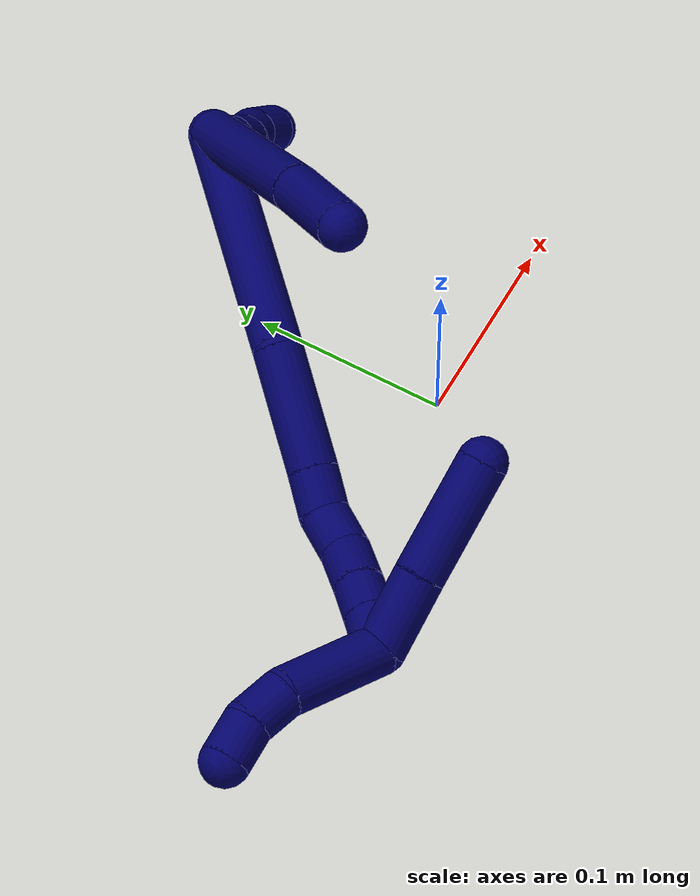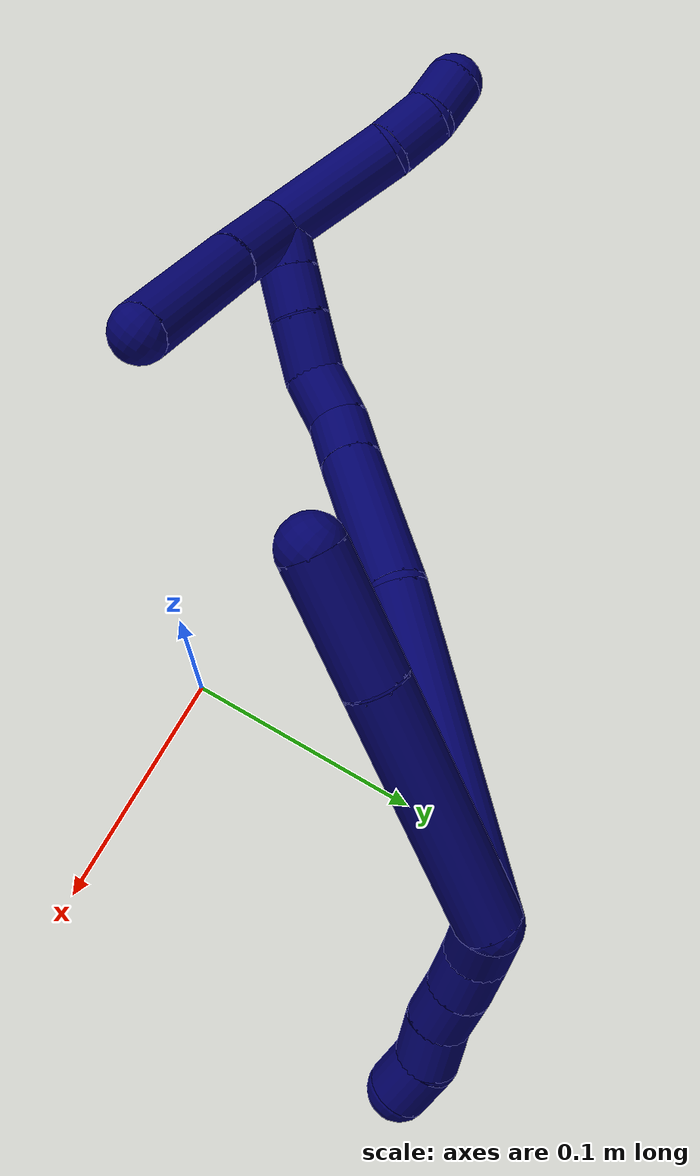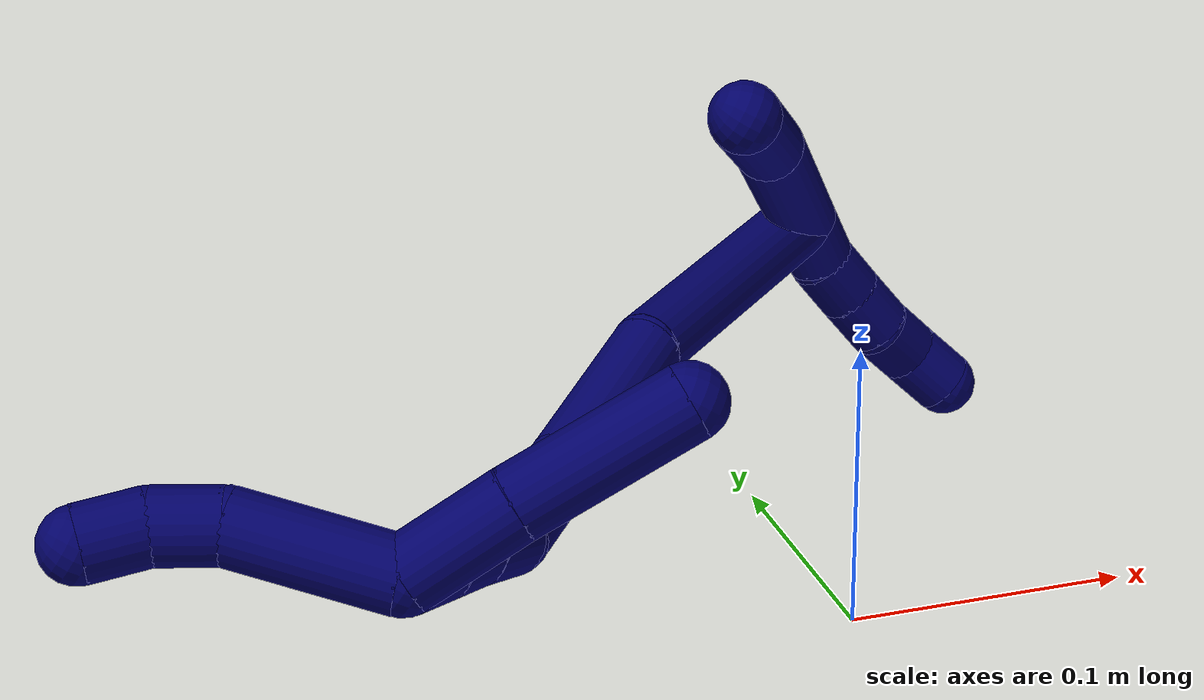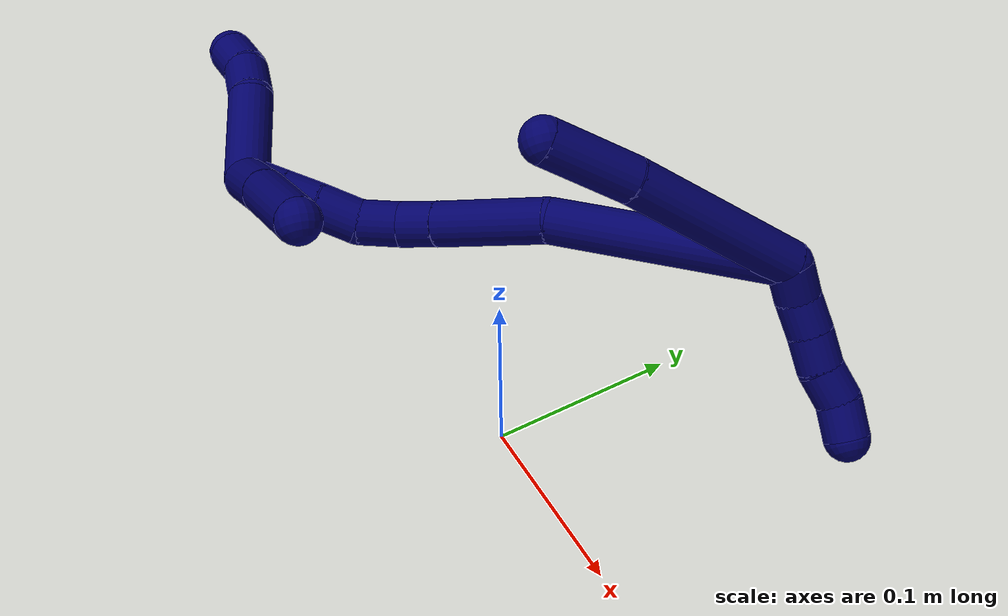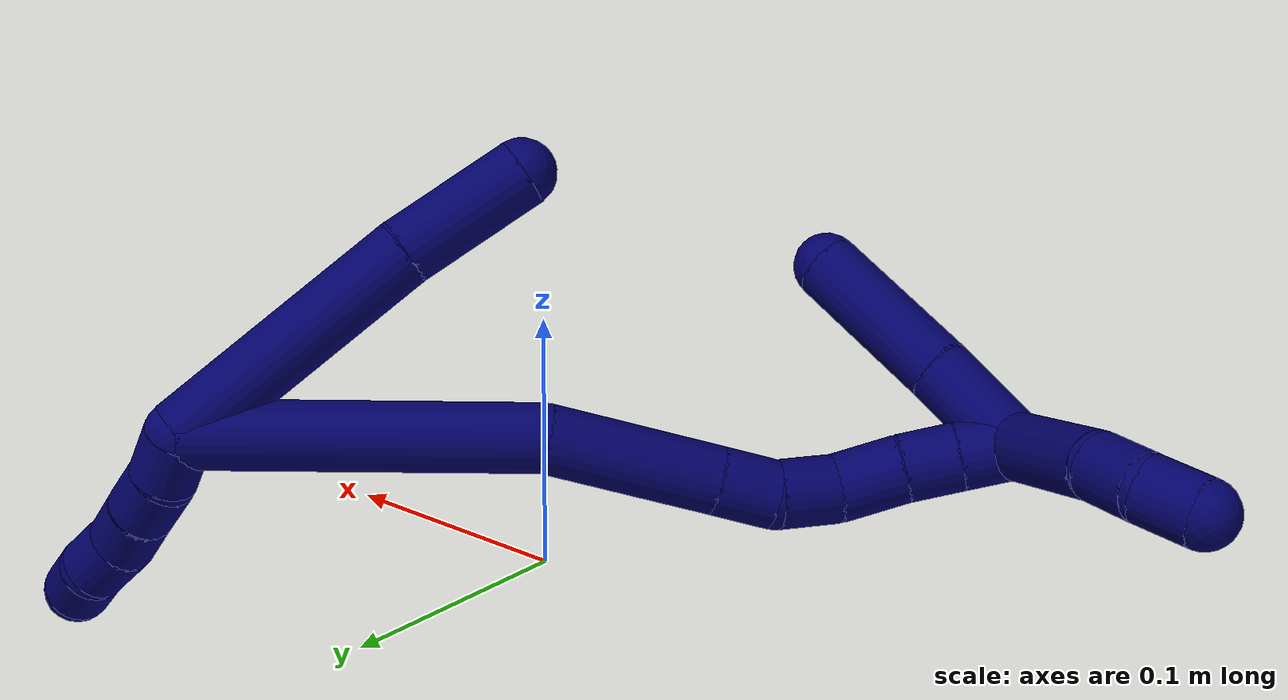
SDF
<sdf version="1.7">
 <world name="default">
  <model name="7">
   <static>0</static>
   <link name="7">
    <collision name="collision-cylinder-e_1_2_8">
     <pose>-0.023149 -0.037364 0.02426 0.994908 -0.47923 -0.26378</pose>
     <geometry><cylinder><radius>0.0125</radius><length>0.100409</length></cylinder></geometry>
     <surface>
      <friction><ode><mu>1.16</mu><mu2>1.16</mu2><slip1>0</slip1><slip2>0</slip2></ode></friction>
      <contact><ode><kp>1e+06</kp><kd>1</kd><max_vel>0</max_vel><min_depth>0.001</min_depth></ode></contact>
     </surface>
    </collision>
    <visual name="visual-cylinder-e_1_2_8">
     <pose>-0.023149 -0.037364 0.02426 0.994908 -0.47923 -0.26378</pose>
     <geometry><cylinder><radius>0.0125</radius><length>0.100409</length></cylinder></geometry>
     <material><ambient>0.003922 0 0.403922 1</ambient></material>
    </visual>
    <collision name="collision-cylinder-e_2_8_6">
     <pose>-0.059699 -0.092105 0.060065 0.984453 -0.570955 -0.312212</pose>
     <geometry><cylinder><radius>0.0125</radius><length>0.049591</length></cylinder></geometry>
     <surface>
      <friction><ode><mu>1.16</mu><mu2>1.16</mu2><slip1>0</slip1><slip2>0</slip2></ode></friction>
      <contact><ode><kp>1e+06</kp><kd>1</kd><max_vel>0</max_vel><min_depth>0.001</min_depth></ode></contact>
     </surface>
    </collision>
    <visual name="visual-cylinder-e_2_8_6">
     <pose>-0.059699 -0.092105 0.060065 0.984453 -0.570955 -0.312212</pose>
     <geometry><cylinder><radius>0.0125</radius><length>0.049591</length></cylinder></geometry>
     <material><ambient>0.003922 0 0.403922 1</ambient></material>
    </visual>
    <collision name="collision-cylinder-e_1_2_9">
     <pose>-0.001564 0.00588 -0.007936 -2.50398 -0.157051 0.468063</pose>
     <geometry><cylinder><radius>0.0125</radius><length>0.02</length></cylinder></geometry>
     <surface>
      <friction><ode><mu>1.16</mu><mu2>1.16</mu2><slip1>0</slip1><slip2>0</slip2></ode></friction>
      <contact><ode><kp>1e+06</kp><kd>1</kd><max_vel>0</max_vel><min_depth>0.001</min_depth></ode></contact>
     </surface>
    </collision>
    <visual name="visual-cylinder-e_1_2_9">
     <pose>-0.001564 0.00588 -0.007936 -2.50398 -0.157051 0.468063</pose>
     <geometry><cylinder><radius>0.0125</radius><length>0.02</length></cylinder></geometry>
     <material><ambient>0.003922 0 0.403922 1</ambient></material>
    </visual>
    <collision name="collision-cylinder-e_2_9_10">
     <pose>-0.003426 0.016046 -0.024902 -2.69834 -0.029751 0.131855</pose>
     <geometry><cylinder><radius>0.0125</radius><length>0.02</length></cylinder></geometry>
     <surface>
      <friction><ode><mu>1.16</mu><mu2>1.16</mu2><slip1>0</slip1><slip2>0</slip2></ode></friction>
      <contact><ode><kp>1e+06</kp><kd>1</kd><max_vel>0</max_vel><min_depth>0.001</min_depth></ode></contact>
     </surface>
    </collision>
    <visual name="visual-cylinder-e_2_9_10">
     <pose>-0.003426 0.016046 -0.024902 -2.69834 -0.029751 0.131855</pose>
     <geometry><cylinder><radius>0.0125</radius><length>0.02</length></cylinder></geometry>
     <material><ambient>0.003922 0 0.403922 1</ambient></material>
    </visual>
    <collision name="collision-cylinder-e_3_10_11">
     <pose>-0.004455 0.024107 -0.043164 -2.75354 -0.073239 0.368654</pose>
     <geometry><cylinder><radius>0.0125</radius><length>0.02</length></cylinder></geometry>
     <surface>
      <friction><ode><mu>1.16</mu><mu2>1.16</mu2><slip1>0</slip1><slip2>0</slip2></ode></friction>
      <contact><ode><kp>1e+06</kp><kd>1</kd><max_vel>0</max_vel><min_depth>0.001</min_depth></ode></contact>
     </surface>
    </collision>
    <visual name="visual-cylinder-e_3_10_11">
     <pose>-0.004455 0.024107 -0.043164 -2.75354 -0.073239 0.368654</pose>
     <geometry><cylinder><radius>0.0125</radius><length>0.02</length></cylinder></geometry>
     <material><ambient>0.003922 0 0.403922 1</ambient></material>
    </visual>
    <collision name="collision-cylinder-e_4_11_12">
     <pose>-0.003746 0.03206 -0.061365 -2.70551 0.144591 -0.631843</pose>
     <geometry><cylinder><radius>0.0125</radius><length>0.02</length></cylinder></geometry>
     <surface>
      <friction><ode><mu>1.16</mu><mu2>1.16</mu2><slip1>0</slip1><slip2>0</slip2></ode></friction>
      <contact><ode><kp>1e+06</kp><kd>1</kd><max_vel>0</max_vel><min_depth>0.001</min_depth></ode></contact>
     </surface>
    </collision>
    <visual name="visual-cylinder-e_4_11_12">
     <pose>-0.003746 0.03206 -0.061365 -2.70551 0.144591 -0.631843</pose>
     <geometry><cylinder><radius>0.0125</radius><length>0.02</length></cylinder></geometry>
     <material><ambient>0.003922 0 0.403922 1</ambient></material>
    </visual>
    <collision name="collision-cylinder-e_5_12_5">
     <pose>-0.003228 0.038194 -0.080098 -2.94409 -0.092442 0.873581</pose>
     <geometry><cylinder><radius>0.0125</radius><length>0.02</length></cylinder></geometry>
     <surface>
      <friction><ode><mu>1.16</mu><mu2>1.16</mu2><slip1>0</slip1><slip2>0</slip2></ode></friction>
      <contact><ode><kp>1e+06</kp><kd>1</kd><max_vel>0</max_vel><min_depth>0.001</min_depth></ode></contact>
     </surface>
    </collision>
    <visual name="visual-cylinder-e_5_12_5">
     <pose>-0.003228 0.038194 -0.080098 -2.94409 -0.092442 0.873581</pose>
     <geometry><cylinder><radius>0.0125</radius><length>0.02</length></cylinder></geometry>
     <material><ambient>0.003922 0 0.403922 1</ambient></material>
    </visual>
    <collision name="collision-cylinder-e_1_2_13">
     <pose>-0.055598 -0.013161 0.027294 0.449297 -1.0718 -0.269756</pose>
     <geometry><cylinder><radius>0.0125</radius><length>0.126639</length></cylinder></geometry>
     <surface>
      <friction><ode><mu>1.16</mu><mu2>1.16</mu2><slip1>0</slip1><slip2>0</slip2></ode></friction>
      <contact><ode><kp>1e+06</kp><kd>1</kd><max_vel>0</max_vel><min_depth>0.001</min_depth></ode></contact>
     </surface>
    </collision>
    <visual name="visual-cylinder-e_1_2_13">
     <pose>-0.055598 -0.013161 0.027294 0.449297 -1.0718 -0.269756</pose>
     <geometry><cylinder><radius>0.0125</radius><length>0.126639</length></cylinder></geometry>
     <material><ambient>0.003922 0 0.403922 1</ambient></material>
    </visual>
    <collision name="collision-cylinder-e_2_13_14">
     <pose>-0.141743 -0.027328 0.063039 0.118522 -1.29907 -0.090059</pose>
     <geometry><cylinder><radius>0.0125</radius><length>0.06342</length></cylinder></geometry>
     <surface>
      <friction><ode><mu>1.16</mu><mu2>1.16</mu2><slip1>0</slip1><slip2>0</slip2></ode></friction>
      <contact><ode><kp>1e+06</kp><kd>1</kd><max_vel>0</max_vel><min_depth>0.001</min_depth></ode></contact>
     </surface>
    </collision>
    <visual name="visual-cylinder-e_2_13_14">
     <pose>-0.141743 -0.027328 0.063039 0.118522 -1.29907 -0.090059</pose>
     <geometry><cylinder><radius>0.0125</radius><length>0.06342</length></cylinder></geometry>
     <material><ambient>0.003922 0 0.403922 1</ambient></material>
    </visual>
    <collision name="collision-cylinder-e_3_14_15">
     <pose>-0.182791 -0.028531 0.074664 0.061995 -1.27677 -0.046009</pose>
     <geometry><cylinder><radius>0.0125</radius><length>0.021944</length></cylinder></geometry>
     <surface>
      <friction><ode><mu>1.16</mu><mu2>1.16</mu2><slip1>0</slip1><slip2>0</slip2></ode></friction>
      <contact><ode><kp>1e+06</kp><kd>1</kd><max_vel>0</max_vel><min_depth>0.001</min_depth></ode></contact>
     </surface>
    </collision>
    <visual name="visual-cylinder-e_3_14_15">
     <pose>-0.182791 -0.028531 0.074664 0.061995 -1.27677 -0.046009</pose>
     <geometry><cylinder><radius>0.0125</radius><length>0.021944</length></cylinder></geometry>
     <material><ambient>0.003922 0 0.403922 1</ambient></material>
    </visual>
    <collision name="collision-cylinder-e_4_15_16">
     <pose>-0.203479 -0.032798 0.081172 0.884433 -1.09407 -0.561511</pose>
     <geometry><cylinder><radius>0.0125</radius><length>0.02293</length></cylinder></geometry>
     <surface>
      <friction><ode><mu>1.16</mu><mu2>1.16</mu2><slip1>0</slip1><slip2>0</slip2></ode></friction>
      <contact><ode><kp>1e+06</kp><kd>1</kd><max_vel>0</max_vel><min_depth>0.001</min_depth></ode></contact>
     </surface>
    </collision>
    <visual name="visual-cylinder-e_4_15_16">
     <pose>-0.203479 -0.032798 0.081172 0.884433 -1.09407 -0.561511</pose>
     <geometry><cylinder><radius>0.0125</radius><length>0.02293</length></cylinder></geometry>
     <material><ambient>0.003922 0 0.403922 1</ambient></material>
    </visual>
    <collision name="collision-cylinder-e_5_16_17">
     <pose>-0.222352 -0.042299 0.091493 0.660697 -0.776062 -0.278521</pose>
     <geometry><cylinder><radius>0.0125</radius><length>0.024802</length></cylinder></geometry>
     <surface>
      <friction><ode><mu>1.16</mu><mu2>1.16</mu2><slip1>0</slip1><slip2>0</slip2></ode></friction>
      <contact><ode><kp>1e+06</kp><kd>1</kd><max_vel>0</max_vel><min_depth>0.001</min_depth></ode></contact>
     </surface>
    </collision>
    <visual name="visual-cylinder-e_5_16_17">
     <pose>-0.222352 -0.042299 0.091493 0.660697 -0.776062 -0.278521</pose>
     <geometry><cylinder><radius>0.0125</radius><length>0.024802</length></cylinder></geometry>
     <material><ambient>0.003922 0 0.403922 1</ambient></material>
    </visual>
    <collision name="collision-cylinder-e_6_17_18">
     <pose>-0.238542 -0.051486 0.104019 0.596071 -0.842558 -0.273584</pose>
     <geometry><cylinder><radius>0.0125</radius><length>0.020108</length></cylinder></geometry>
     <surface>
      <friction><ode><mu>1.16</mu><mu2>1.16</mu2><slip1>0</slip1><slip2>0</slip2></ode></friction>
      <contact><ode><kp>1e+06</kp><kd>1</kd><max_vel>0</max_vel><min_depth>0.001</min_depth></ode></contact>
     </surface>
    </collision>
    <visual name="visual-cylinder-e_6_17_18">
     <pose>-0.238542 -0.051486 0.104019 0.596071 -0.842558 -0.273584</pose>
     <geometry><cylinder><radius>0.0125</radius><length>0.020108</length></cylinder></geometry>
     <material><ambient>0.003922 0 0.403922 1</ambient></material>
    </visual>
    <collision name="collision-cylinder-e_7_18_1">
     <pose>-0.253558 -0.058943 0.115165 0.583213 -0.841062 -0.266876</pose>
     <geometry><cylinder><radius>0.0125</radius><length>0.020157</length></cylinder></geometry>
     <surface>
      <friction><ode><mu>1.16</mu><mu2>1.16</mu2><slip1>0</slip1><slip2>0</slip2></ode></friction>
      <contact><ode><kp>1e+06</kp><kd>1</kd><max_vel>0</max_vel><min_depth>0.001</min_depth></ode></contact>
     </surface>
    </collision>
    <visual name="visual-cylinder-e_7_18_1">
     <pose>-0.253558 -0.058943 0.115165 0.583213 -0.841062 -0.266876</pose>
     <geometry><cylinder><radius>0.0125</radius><length>0.020157</length></cylinder></geometry>
     <material><ambient>0.003922 0 0.403922 1</ambient></material>
    </visual>
    <collision name="collision-cylinder-e_1_1_19">
     <pose>-0.24931 -0.075175 0.111407 2.21265 0.644606 1.17581</pose>
     <geometry><cylinder><radius>0.0125</radius><length>0.039145</length></cylinder></geometry>
     <surface>
      <friction><ode><mu>1.16</mu><mu2>1.16</mu2><slip1>0</slip1><slip2>0</slip2></ode></friction>
      <contact><ode><kp>1e+06</kp><kd>1</kd><max_vel>0</max_vel><min_depth>0.001</min_depth></ode></contact>
     </surface>
    </collision>
    <visual name="visual-cylinder-e_1_1_19">
     <pose>-0.24931 -0.075175 0.111407 2.21265 0.644606 1.17581</pose>
     <geometry><cylinder><radius>0.0125</radius><length>0.039145</length></cylinder></geometry>
     <material><ambient>0.003922 0 0.403922 1</ambient></material>
    </visual>
    <collision name="collision-cylinder-e_2_19_4">
     <pose>-0.219705 -0.106544 0.086148 2.27158 0.626654 1.21773</pose>
     <geometry><cylinder><radius>0.0125</radius><length>0.060855</length></cylinder></geometry>
     <surface>
      <friction><ode><mu>1.16</mu><mu2>1.16</mu2><slip1>0</slip1><slip2>0</slip2></ode></friction>
      <contact><ode><kp>1e+06</kp><kd>1</kd><max_vel>0</max_vel><min_depth>0.001</min_depth></ode></contact>
     </surface>
    </collision>
    <visual name="visual-cylinder-e_2_19_4">
     <pose>-0.219705 -0.106544 0.086148 2.27158 0.626654 1.21773</pose>
     <geometry><cylinder><radius>0.0125</radius><length>0.060855</length></cylinder></geometry>
     <material><ambient>0.003922 0 0.403922 1</ambient></material>
    </visual>
    <collision name="collision-cylinder-e_1_1_20">
     <pose>-0.26025 -0.052663 0.14655 -0.369416 0.029677 -0.005545</pose>
     <geometry><cylinder><radius>0.0125</radius><length>0.055307</length></cylinder></geometry>
     <surface>
      <friction><ode><mu>1.16</mu><mu2>1.16</mu2><slip1>0</slip1><slip2>0</slip2></ode></friction>
      <contact><ode><kp>1e+06</kp><kd>1</kd><max_vel>0</max_vel><min_depth>0.001</min_depth></ode></contact>
     </surface>
    </collision>
    <visual name="visual-cylinder-e_1_1_20">
     <pose>-0.26025 -0.052663 0.14655 -0.369416 0.029677 -0.005545</pose>
     <geometry><cylinder><radius>0.0125</radius><length>0.055307</length></cylinder></geometry>
     <material><ambient>0.003922 0 0.403922 1</ambient></material>
    </visual>
    <collision name="collision-cylinder-e_2_20_21">
     <pose>-0.262085 -0.037566 0.18213 -0.481034 -0.235709 0.058064</pose>
     <geometry><cylinder><radius>0.0125</radius><length>0.022744</length></cylinder></geometry>
     <surface>
      <friction><ode><mu>1.16</mu><mu2>1.16</mu2><slip1>0</slip1><slip2>0</slip2></ode></friction>
      <contact><ode><kp>1e+06</kp><kd>1</kd><max_vel>0</max_vel><min_depth>0.001</min_depth></ode></contact>
     </surface>
    </collision>
    <visual name="visual-cylinder-e_2_20_21">
     <pose>-0.262085 -0.037566 0.18213 -0.481034 -0.235709 0.058064</pose>
     <geometry><cylinder><radius>0.0125</radius><length>0.022744</length></cylinder></geometry>
     <material><ambient>0.003922 0 0.403922 1</ambient></material>
    </visual>
    <collision name="collision-cylinder-e_3_21_3">
     <pose>-0.27049 -0.028273 0.200295 -0.463218 -0.551413 0.133247</pose>
     <geometry><cylinder><radius>0.0125</radius><length>0.021948</length></cylinder></geometry>
     <surface>
      <friction><ode><mu>1.16</mu><mu2>1.16</mu2><slip1>0</slip1><slip2>0</slip2></ode></friction>
      <contact><ode><kp>1e+06</kp><kd>1</kd><max_vel>0</max_vel><min_depth>0.001</min_depth></ode></contact>
     </surface>
    </collision>
    <visual name="visual-cylinder-e_3_21_3">
     <pose>-0.27049 -0.028273 0.200295 -0.463218 -0.551413 0.133247</pose>
     <geometry><cylinder><radius>0.0125</radius><length>0.021948</length></cylinder></geometry>
     <material><ambient>0.003922 0 0.403922 1</ambient></material>
    </visual>
    <collision name="collision-sphere-3">
     <pose>-0.276239 -0.024096 0.208658 0 -0 0</pose>
     <geometry><sphere><radius>0.0125</radius></sphere></geometry>
     <surface>
      <friction><ode><mu>1.16</mu><mu2>1.16</mu2><slip1>0</slip1><slip2>0</slip2></ode></friction>
      <contact><ode><kp>1e+06</kp><kd>1</kd><max_vel>0</max_vel><min_depth>0.001</min_depth></ode></contact>
     </surface>
    </collision>
    <visual name="visual-sphere-3">
     <pose>-0.276239 -0.024096 0.208658 0 -0 0</pose>
     <geometry><sphere><radius>0.0125</radius></sphere></geometry>
     <material><ambient>0.003922 0 0.403922 1</ambient></material>
    </visual>
    <collision name="collision-sphere-21">
     <pose>-0.264741 -0.03245 0.191932 0 -0 0</pose>
     <geometry><sphere><radius>0.0125</radius></sphere></geometry>
     <surface>
      <friction><ode><mu>1.16</mu><mu2>1.16</mu2><slip1>0</slip1><slip2>0</slip2></ode></friction>
      <contact><ode><kp>1e+06</kp><kd>1</kd><max_vel>0</max_vel><min_depth>0.001</min_depth></ode></contact>
     </surface>
    </collision>
    <visual name="visual-sphere-21">
     <pose>-0.264741 -0.03245 0.191932 0 -0 0</pose>
     <geometry><sphere><radius>0.0125</radius></sphere></geometry>
     <material><ambient>0.003922 0 0.403922 1</ambient></material>
    </visual>
    <collision name="collision-sphere-20">
     <pose>-0.259429 -0.042682 0.172327 0 -0 0</pose>
     <geometry><sphere><radius>0.0125</radius></sphere></geometry>
     <surface>
      <friction><ode><mu>1.16</mu><mu2>1.16</mu2><slip1>0</slip1><slip2>0</slip2></ode></friction>
      <contact><ode><kp>1e+06</kp><kd>1</kd><max_vel>0</max_vel><min_depth>0.001</min_depth></ode></contact>
     </surface>
    </collision>
    <visual name="visual-sphere-20">
     <pose>-0.259429 -0.042682 0.172327 0 -0 0</pose>
     <geometry><sphere><radius>0.0125</radius></sphere></geometry>
     <material><ambient>0.003922 0 0.403922 1</ambient></material>
    </visual>
    <collision name="collision-sphere-4">
     <pose>-0.201861 -0.125382 0.070256 0 -0 0</pose>
     <geometry><sphere><radius>0.0125</radius></sphere></geometry>
     <surface>
      <friction><ode><mu>1.16</mu><mu2>1.16</mu2><slip1>0</slip1><slip2>0</slip2></ode></friction>
      <contact><ode><kp>1e+06</kp><kd>1</kd><max_vel>0</max_vel><min_depth>0.001</min_depth></ode></contact>
     </surface>
    </collision>
    <visual name="visual-sphere-4">
     <pose>-0.201861 -0.125382 0.070256 0 -0 0</pose>
     <geometry><sphere><radius>0.0125</radius></sphere></geometry>
     <material><ambient>0.003922 0 0.403922 1</ambient></material>
    </visual>
    <collision name="collision-sphere-11">
     <pose>-0.005187 0.02788 -0.052395 0 -0 0</pose>
     <geometry><sphere><radius>0.0125</radius></sphere></geometry>
     <surface>
      <friction><ode><mu>1.16</mu><mu2>1.16</mu2><slip1>0</slip1><slip2>0</slip2></ode></friction>
      <contact><ode><kp>1e+06</kp><kd>1</kd><max_vel>0</max_vel><min_depth>0.001</min_depth></ode></contact>
     </surface>
    </collision>
    <visual name="visual-sphere-11">
     <pose>-0.005187 0.02788 -0.052395 0 -0 0</pose>
     <geometry><sphere><radius>0.0125</radius></sphere></geometry>
     <material><ambient>0.003922 0 0.403922 1</ambient></material>
    </visual>
    <collision name="collision-sphere-10">
     <pose>-0.003723 0.020333 -0.033932 0 -0 0</pose>
     <geometry><sphere><radius>0.0125</radius></sphere></geometry>
     <surface>
      <friction><ode><mu>1.16</mu><mu2>1.16</mu2><slip1>0</slip1><slip2>0</slip2></ode></friction>
      <contact><ode><kp>1e+06</kp><kd>1</kd><max_vel>0</max_vel><min_depth>0.001</min_depth></ode></contact>
     </surface>
    </collision>
    <visual name="visual-sphere-10">
     <pose>-0.003723 0.020333 -0.033932 0 -0 0</pose>
     <geometry><sphere><radius>0.0125</radius></sphere></geometry>
     <material><ambient>0.003922 0 0.403922 1</ambient></material>
    </visual>
    <collision name="collision-sphere-6">
     <pose>-0.073099 -0.109483 0.071608 0 -0 0</pose>
     <geometry><sphere><radius>0.0125</radius></sphere></geometry>
     <surface>
      <friction><ode><mu>1.16</mu><mu2>1.16</mu2><slip1>0</slip1><slip2>0</slip2></ode></friction>
      <contact><ode><kp>1e+06</kp><kd>1</kd><max_vel>0</max_vel><min_depth>0.001</min_depth></ode></contact>
     </surface>
    </collision>
    <visual name="visual-sphere-6">
     <pose>-0.073099 -0.109483 0.071608 0 -0 0</pose>
     <geometry><sphere><radius>0.0125</radius></sphere></geometry>
     <material><ambient>0.003922 0 0.403922 1</ambient></material>
    </visual>
    <collision name="collision-sphere-9">
     <pose>-0.003128 0.011759 -0.015873 0 -0 0</pose>
     <geometry><sphere><radius>0.0125</radius></sphere></geometry>
     <surface>
      <friction><ode><mu>1.16</mu><mu2>1.16</mu2><slip1>0</slip1><slip2>0</slip2></ode></friction>
      <contact><ode><kp>1e+06</kp><kd>1</kd><max_vel>0</max_vel><min_depth>0.001</min_depth></ode></contact>
     </surface>
    </collision>
    <visual name="visual-sphere-9">
     <pose>-0.003128 0.011759 -0.015873 0 -0 0</pose>
     <geometry><sphere><radius>0.0125</radius></sphere></geometry>
     <material><ambient>0.003922 0 0.403922 1</ambient></material>
    </visual>
    <collision name="collision-sphere-2">
     <geometry><sphere><radius>0.0125</radius></sphere></geometry>
     <surface>
      <friction><ode><mu>1.16</mu><mu2>1.16</mu2><slip1>0</slip1><slip2>0</slip2></ode></friction>
      <contact><ode><kp>1e+06</kp><kd>1</kd><max_vel>0</max_vel><min_depth>0.001</min_depth></ode></contact>
     </surface>
    </collision>
    <visual name="visual-sphere-2">
     <geometry><sphere><radius>0.0125</radius></sphere></geometry>
     <material><ambient>0.003922 0 0.403922 1</ambient></material>
    </visual>
    <collision name="collision-sphere-19">
     <pose>-0.237549 -0.087707 0.10204 0 -0 0</pose>
     <geometry><sphere><radius>0.0125</radius></sphere></geometry>
     <surface>
      <friction><ode><mu>1.16</mu><mu2>1.16</mu2><slip1>0</slip1><slip2>0</slip2></ode></friction>
      <contact><ode><kp>1e+06</kp><kd>1</kd><max_vel>0</max_vel><min_depth>0.001</min_depth></ode></contact>
     </surface>
    </collision>
    <visual name="visual-sphere-19">
     <pose>-0.237549 -0.087707 0.10204 0 -0 0</pose>
     <geometry><sphere><radius>0.0125</radius></sphere></geometry>
     <material><ambient>0.003922 0 0.403922 1</ambient></material>
    </visual>
    <collision name="collision-sphere-8">
     <pose>-0.046298 -0.074727 0.048521 0 -0 0</pose>
     <geometry><sphere><radius>0.0125</radius></sphere></geometry>
     <surface>
      <friction><ode><mu>1.16</mu><mu2>1.16</mu2><slip1>0</slip1><slip2>0</slip2></ode></friction>
      <contact><ode><kp>1e+06</kp><kd>1</kd><max_vel>0</max_vel><min_depth>0.001</min_depth></ode></contact>
     </surface>
    </collision>
    <visual name="visual-sphere-8">
     <pose>-0.046298 -0.074727 0.048521 0 -0 0</pose>
     <geometry><sphere><radius>0.0125</radius></sphere></geometry>
     <material><ambient>0.003922 0 0.403922 1</ambient></material>
    </visual>
    <collision name="collision-sphere-12">
     <pose>-0.002305 0.03624 -0.070334 0 -0 0</pose>
     <geometry><sphere><radius>0.0125</radius></sphere></geometry>
     <surface>
      <friction><ode><mu>1.16</mu><mu2>1.16</mu2><slip1>0</slip1><slip2>0</slip2></ode></friction>
      <contact><ode><kp>1e+06</kp><kd>1</kd><max_vel>0</max_vel><min_depth>0.001</min_depth></ode></contact>
     </surface>
    </collision>
    <visual name="visual-sphere-12">
     <pose>-0.002305 0.03624 -0.070334 0 -0 0</pose>
     <geometry><sphere><radius>0.0125</radius></sphere></geometry>
     <material><ambient>0.003922 0 0.403922 1</ambient></material>
    </visual>
    <collision name="collision-sphere-5">
     <pose>-0.004151 0.040148 -0.089862 0 -0 0</pose>
     <geometry><sphere><radius>0.0125</radius></sphere></geometry>
     <surface>
      <friction><ode><mu>1.16</mu><mu2>1.16</mu2><slip1>0</slip1><slip2>0</slip2></ode></friction>
      <contact><ode><kp>1e+06</kp><kd>1</kd><max_vel>0</max_vel><min_depth>0.001</min_depth></ode></contact>
     </surface>
    </collision>
    <visual name="visual-sphere-5">
     <pose>-0.004151 0.040148 -0.089862 0 -0 0</pose>
     <geometry><sphere><radius>0.0125</radius></sphere></geometry>
     <material><ambient>0.003922 0 0.403922 1</ambient></material>
    </visual>
    <collision name="collision-sphere-13">
     <pose>-0.111197 -0.026322 0.054588 0 -0 0</pose>
     <geometry><sphere><radius>0.0125</radius></sphere></geometry>
     <surface>
      <friction><ode><mu>1.16</mu><mu2>1.16</mu2><slip1>0</slip1><slip2>0</slip2></ode></friction>
      <contact><ode><kp>1e+06</kp><kd>1</kd><max_vel>0</max_vel><min_depth>0.001</min_depth></ode></contact>
     </surface>
    </collision>
    <visual name="visual-sphere-13">
     <pose>-0.111197 -0.026322 0.054588 0 -0 0</pose>
     <geometry><sphere><radius>0.0125</radius></sphere></geometry>
     <material><ambient>0.003922 0 0.403922 1</ambient></material>
    </visual>
    <collision name="collision-sphere-14">
     <pose>-0.17229 -0.028334 0.07149 0 -0 0</pose>
     <geometry><sphere><radius>0.0125</radius></sphere></geometry>
     <surface>
      <friction><ode><mu>1.16</mu><mu2>1.16</mu2><slip1>0</slip1><slip2>0</slip2></ode></friction>
      <contact><ode><kp>1e+06</kp><kd>1</kd><max_vel>0</max_vel><min_depth>0.001</min_depth></ode></contact>
     </surface>
    </collision>
    <visual name="visual-sphere-14">
     <pose>-0.17229 -0.028334 0.07149 0 -0 0</pose>
     <geometry><sphere><radius>0.0125</radius></sphere></geometry>
     <material><ambient>0.003922 0 0.403922 1</ambient></material>
    </visual>
    <collision name="collision-sphere-15">
     <pose>-0.193292 -0.028728 0.077838 0 -0 0</pose>
     <geometry><sphere><radius>0.0125</radius></sphere></geometry>
     <surface>
      <friction><ode><mu>1.16</mu><mu2>1.16</mu2><slip1>0</slip1><slip2>0</slip2></ode></friction>
      <contact><ode><kp>1e+06</kp><kd>1</kd><max_vel>0</max_vel><min_depth>0.001</min_depth></ode></contact>
     </surface>
    </collision>
    <visual name="visual-sphere-15">
     <pose>-0.193292 -0.028728 0.077838 0 -0 0</pose>
     <geometry><sphere><radius>0.0125</radius></sphere></geometry>
     <material><ambient>0.003922 0 0.403922 1</ambient></material>
    </visual>
    <collision name="collision-sphere-16">
     <pose>-0.213666 -0.036868 0.084506 0 -0 0</pose>
     <geometry><sphere><radius>0.0125</radius></sphere></geometry>
     <surface>
      <friction><ode><mu>1.16</mu><mu2>1.16</mu2><slip1>0</slip1><slip2>0</slip2></ode></friction>
      <contact><ode><kp>1e+06</kp><kd>1</kd><max_vel>0</max_vel><min_depth>0.001</min_depth></ode></contact>
     </surface>
    </collision>
    <visual name="visual-sphere-16">
     <pose>-0.213666 -0.036868 0.084506 0 -0 0</pose>
     <geometry><sphere><radius>0.0125</radius></sphere></geometry>
     <material><ambient>0.003922 0 0.403922 1</ambient></material>
    </visual>
    <collision name="collision-sphere-17">
     <pose>-0.231038 -0.04773 0.098481 0 -0 0</pose>
     <geometry><sphere><radius>0.0125</radius></sphere></geometry>
     <surface>
      <friction><ode><mu>1.16</mu><mu2>1.16</mu2><slip1>0</slip1><slip2>0</slip2></ode></friction>
      <contact><ode><kp>1e+06</kp><kd>1</kd><max_vel>0</max_vel><min_depth>0.001</min_depth></ode></contact>
     </surface>
    </collision>
    <visual name="visual-sphere-17">
     <pose>-0.231038 -0.04773 0.098481 0 -0 0</pose>
     <geometry><sphere><radius>0.0125</radius></sphere></geometry>
     <material><ambient>0.003922 0 0.403922 1</ambient></material>
    </visual>
    <collision name="collision-sphere-18">
     <pose>-0.246046 -0.055243 0.109556 0 -0 0</pose>
     <geometry><sphere><radius>0.0125</radius></sphere></geometry>
     <surface>
      <friction><ode><mu>1.16</mu><mu2>1.16</mu2><slip1>0</slip1><slip2>0</slip2></ode></friction>
      <contact><ode><kp>1e+06</kp><kd>1</kd><max_vel>0</max_vel><min_depth>0.001</min_depth></ode></contact>
     </surface>
    </collision>
    <visual name="visual-sphere-18">
     <pose>-0.246046 -0.055243 0.109556 0 -0 0</pose>
     <geometry><sphere><radius>0.0125</radius></sphere></geometry>
     <material><ambient>0.003922 0 0.403922 1</ambient></material>
    </visual>
    <collision name="collision-sphere-1">
     <pose>-0.26107 -0.062644 0.120773 0 -0 0</pose>
     <geometry><sphere><radius>0.0125</radius></sphere></geometry>
     <surface>
      <friction><ode><mu>1.16</mu><mu2>1.16</mu2><slip1>0</slip1><slip2>0</slip2></ode></friction>
      <contact><ode><kp>1e+06</kp><kd>1</kd><max_vel>0</max_vel><min_depth>0.001</min_depth></ode></contact>
     </surface>
    </collision>
    <visual name="visual-sphere-1">
     <pose>-0.26107 -0.062644 0.120773 0 -0 0</pose>
     <geometry><sphere><radius>0.0125</radius></sphere></geometry>
     <material><ambient>0.003922 0 0.403922 1</ambient></material>
    </visual>
    <inertial>
     <pose>-0.126885 -0.037144 0.059932 0 -0 0</pose>
     <mass>0.75</mass>
     <inertia>
      <ixx>0.000162</ixx>
      <ixy>0</ixy>
      <ixz>0</ixz>
      <iyy>0.000245</iyy>
      <iyz>0</iyz>
      <izz>0.000347</izz>
     </inertia>
    </inertial>
   </link>
   <pose>0.036531 0.14789 0.088371 -0.960218 -0.477736 1.0055</pose>
  </model>
 </world>
</sdf>
